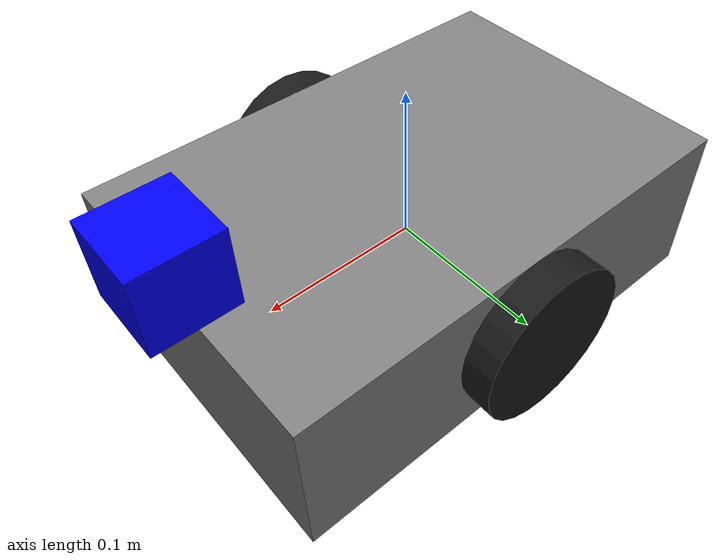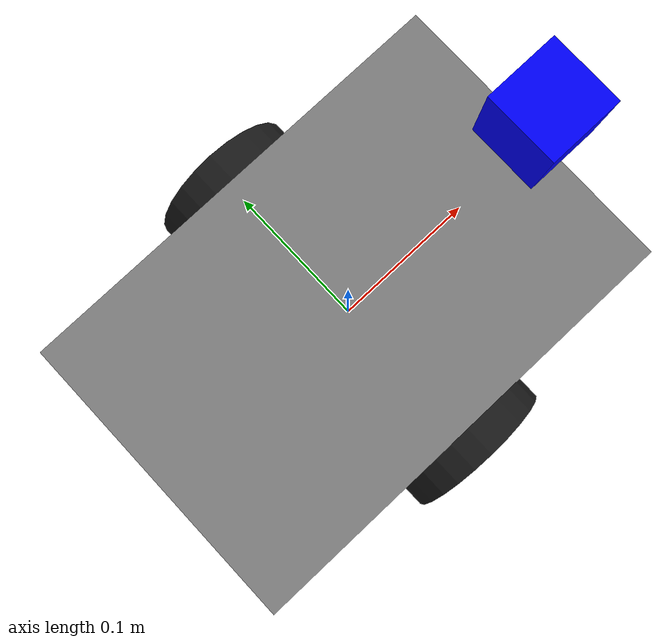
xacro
<?xml version="1.0"?>
<robot xmlns:xacro="http://www.ros.org/wiki/xacro" name="simple_dd_bot_v2">

    <!-- Properties (保持不变) -->
    <xacro:property name="base_width" value="0.2"/>
    <xacro:property name="base_length" value="0.3"/>
    <xacro:property name="base_height" value="0.1"/>
    <xacro:property name="wheel_radius" value="0.05"/>
    <xacro:property name="wheel_thickness" value="0.02"/>
    <xacro:property name="wheel_offset_y" value="${base_width/2 + wheel_thickness/2}"/>
    <xacro:property name="wheel_offset_z" value="${-base_height/2 + wheel_radius}"/>
    <xacro:property name="camera_link_size" value="0.02"/>

    <!-- Inertia Macros (保持不变) -->
    <xacro:macro name="box_inertia" params="m x y z">
        <inertia ixx="${m*(y*y+z*z)/12}" ixy="0" ixz="0" iyy="${m*(x*x+z*z)/12}" iyz="0" izz="${m*(x*x+y*y)/12}"/>
    </xacro:macro>
    <xacro:macro name="cylinder_inertia" params="m r h">
        <inertia ixx="${m*(3*r*r+h*h)/12}" ixy="0" ixz="0" iyy="${m*(3*r*r+h*h)/12}" iyz="0" izz="${m*r*r/2}"/>
    </xacro:macro>
    <xacro:macro name="sphere_inertia" params="m r">
        <inertia ixx="${2*m*r*r/5}" ixy="0" ixz="0" iyy="${2*m*r*r/5}" iyz="0" izz="${2*m*r*r/5}"/>
    </xacro:macro>

    <link name="base_footprint"/>

    <joint name="base_footprint_to_base_link_joint" type="fixed">
        <parent link="base_footprint"/>
        <child link="base_link"/>
        <origin xyz="0 0 0" rpy="0 0 0"/>
    </joint>

    <!-- Base Link -->
    <link name="base_link">
        <visual><geometry><box size="${base_length} ${base_width} ${base_height}"/></geometry><material name="grey"><color rgba="0.5 0.5 0.5 1"/></material></visual>
        <collision><geometry><box size="${base_length} ${base_width} ${base_height}"/></geometry></collision>
        <inertial><mass value="1.0"/><xacro:box_inertia m="1.0" x="${base_length}" y="${base_width}" z="${base_height}"/></inertial>
    </link>

    <!-- Wheels Macro -->
    <xacro:macro name="wheel_link" params="prefix reflect_y">
        <link name="${prefix}_wheel_link">
            <visual><origin xyz="0 0 0" rpy="${pi/2} 0 0"/><geometry><cylinder radius="${wheel_radius}" length="${wheel_thickness}"/></geometry><material name="black"><color rgba="0.1 0.1 0.1 1"/></material></visual>
            <collision>
                <origin xyz="0 0 0" rpy="${pi/2} 0 0"/>
                <geometry><cylinder radius="${wheel_radius}" length="${wheel_thickness}"/></geometry>
                <!-- FIX 1: 为驱动轮添加摩擦力 -->
                <surface>
                    <friction>
                        <ode>
                            <mu>1.0</mu>
                            <mu2>1.0</mu2>
                        </ode>
                    </friction>
                </surface>
            </collision>
            <inertial><mass value="0.1"/><origin xyz="0 0 0" rpy="${pi/2} 0 0"/><xacro:cylinder_inertia m="0.1" r="${wheel_radius}" h="${wheel_thickness}"/></inertial>
        </link>
        <joint name="${prefix}_wheel_joint" type="continuous">
            <parent link="base_link"/><child link="${prefix}_wheel_link"/><origin xyz="0 ${reflect_y * wheel_offset_y} ${wheel_offset_z}" rpy="0 0 0"/><axis xyz="0 1 0"/>
        </joint>
    </xacro:macro>

    <xacro:wheel_link prefix="left" reflect_y="1"/>
    <xacro:wheel_link prefix="right" reflect_y="-1"/>

    <!-- FIX 2: 移除独立的caster link和joint，直接在Gazebo中定义 -->
    <!-- 原来的caster link和joint已被删除 -->

    <!-- Camera Link & Joint -->
    <link name="camera_link">
        <inertial><mass value="0.01"/><xacro:box_inertia m="0.01" x="0.01" y="0.01" z="0.01"/></inertial>
    </link>
    <joint name="camera_joint" type="fixed">
        <parent link="base_link"/>
        <child link="camera_link"/>
        <origin xyz="${base_length/2 - 0.01} 0 ${base_height/2}" rpy="0 0.52 0"/>
    </joint>

    <!-- 创建一个用于放置LIDAR的link -->
    <link name="lidar_link">
        <inertial>
            <mass value="0.1"/>
            <xacro:box_inertia m="0.1" x="0.05" y="0.05" z="0.05"/>
        </inertial>
        <visual>
            <geometry><box size="0.05 0.05 0.05"/></geometry>
            <material name="blue"><color rgba="0 0 1 1"/></material>
        </visual>
        <collision>
            <geometry><box size="0.05 0.05 0.05"/></geometry>
        </collision>
    </link>

    <!-- 将LIDAR link固定在base_link的前方 -->
    <joint name="lidar_joint" type="fixed">
        <parent link="base_link"/>
        <child link="lidar_link"/>
        <!-- 放置在车体最前端、略高于车体的位置 -->
        <origin xyz="${base_length/2} 0 ${base_height/2 + 0.025}" rpy="0 0 0"/>
    </joint>

    <!-- ================ Gazebo Sim (New Gazebo) Integration ================ -->

    <!-- Gazebo插件和物理属性定义 -->
    <gazebo>
        <!-- 差分驱动插件 (保持不变) -->
        <plugin filename="gz-sim-diff-drive-system" name="gz::sim::systems::DiffDrive">
            <left_joint>left_wheel_joint</left_joint>
            <right_joint>right_wheel_joint</right_joint>
            <wheel_separation>${base_width + wheel_thickness}</wheel_separation>
            <wheel_radius>${wheel_radius}</wheel_radius>
            <topic>/cmd_vel</topic>
            <odom_topic>/odom</odom_topic>
            <tf_topic>/tf</tf_topic>

            <odom_publish_frequency>20</odom_publish_frequency>
        </plugin>
    </gazebo>

    <!-- FIX 2: 在base_link上直接定义一个无摩擦的球形碰撞体作为caster -->
    <gazebo reference="base_link">
        <collision name="caster_collision">
            <pose>${base_length/2 * 0.8} 0 ${-base_height/2 + 0.025} 0 0 0</pose>
            <geometry><sphere><radius>0.025</radius></sphere></geometry>
            <surface>
                <friction><ode><mu>0.0</mu><mu2>0.0</mu2></ode></friction>
            </surface>
        </collision>
        <material>Gazebo/Grey</material>
    </gazebo>

    <gazebo reference="camera_link">
        <!-- a) RGB摄像头 -->
        <sensor name="rgb_camera_sensor" type="camera">
            <update_rate>10.0</update_rate>
            <camera>
                <horizontal_fov>1.047</horizontal_fov>
                <image><width>320</width><height>240</height><format>R8G8B8</format></image>
                <clip><near>0.05</near><far>8.0</far></clip>
            </camera>
            <topic>rgb_camera</topic>
            <always_on>1</always_on>
            <visualize>true</visualize>
            <!-- 添加这个插件 -->
        </sensor>

        <sensor name="semantic_camera_sensor" type="segmentation">
            <update_rate>10.0</update_rate>
            <camera>
                <horizontal_fov>1.047</horizontal_fov>
                <image><width>320</width><height>240</height></image>
                <clip><near>0.05</near><far>8.0</far></clip>
            </camera>
            <topic>/semantic_camera</topic>
            <always_on>1</always_on>
            <visualize>true</visualize>

            <segmentation_type>semantic</segmentation_type>

        </sensor>
    </gazebo>

    <!-- Gazebo传感器定义 -->
    <gazebo reference="lidar_link">
        <!-- 添加LIDAR传感器插件 -->
        <sensor name="gpu_lidar" type="gpu_ray">
            <pose>0 0 0 0 0 0</pose>
            <visualize>true</visualize> <!-- 在Gazebo中显示激光线 -->
            <update_rate>10</update_rate>
            <ray>
                <scan>
                    <horizontal>
                        <samples>360</samples> <!-- 360条激光线 -->
                        <resolution>1</resolution>
                        <min_angle>-2.35619</min_angle>
                        <max_angle>2.35619</max_angle>
                    </horizontal>
                </scan>
                <range>
                    <min>0.1</min> <!-- 最小探测距离 -->
                    <max>10.0</max> <!-- 最大探测距离 -->
                    <resolution>0.01</resolution>
                </range>
                <noise>
                    <type>gaussian</type>
                    <mean>0.0</mean>
                    <stddev>0.01</stddev>
                </noise>
            </ray>
            <topic>/scan</topic> <!-- ROS话题名 -->
            <frame>lidar_link</frame>
        </sensor>
    </gazebo>

</robot>
